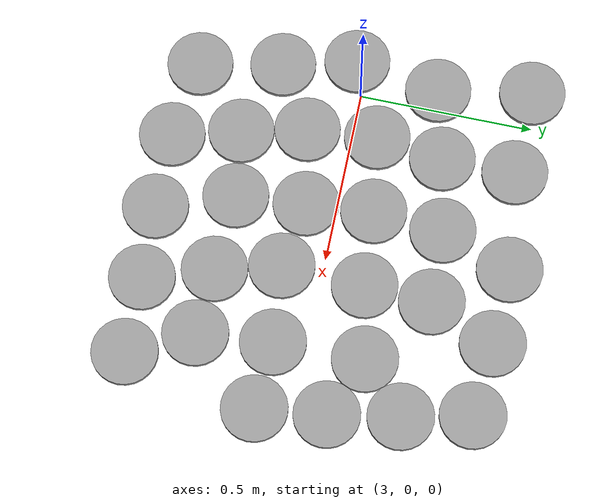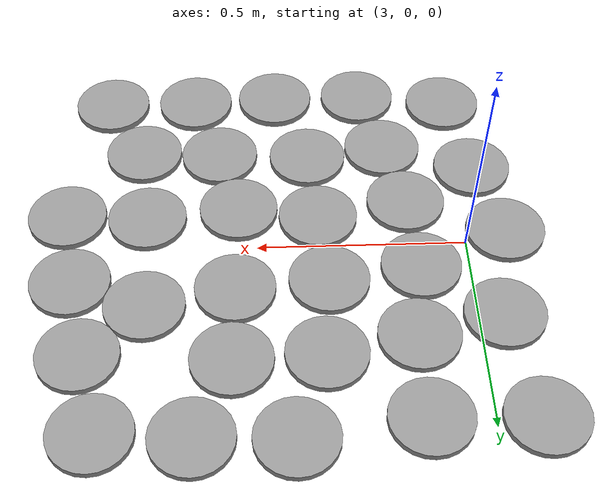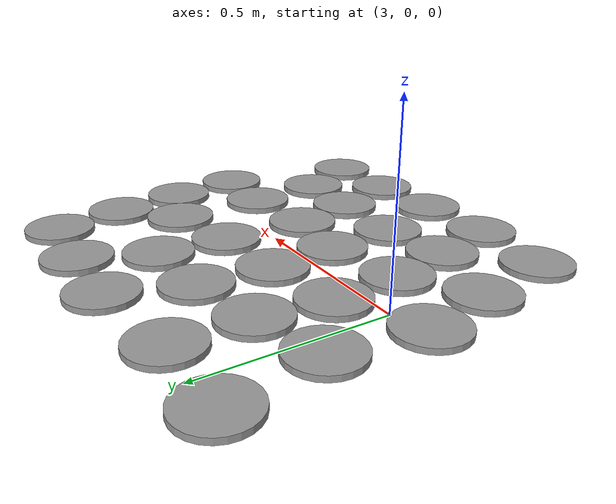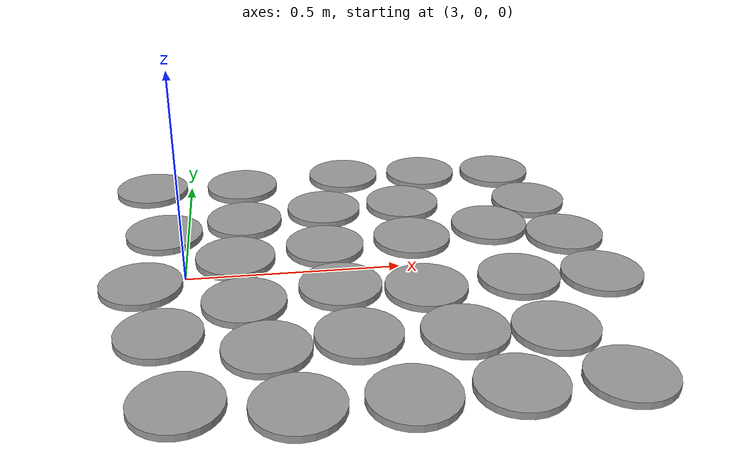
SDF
<sdf version="1.6">
 <world name="default">
  <model name="unit_cylinder_clone_clone_138">
   <pose>2.89325 0.483274 0.008108 0 -0 0</pose>
   <link name="link">
    <inertial>
     <mass>1</mass>
     <inertia><ixx>0.145833</ixx><ixy>0</ixy><ixz>0</ixz><iyy>0.145833</iyy><iyz>0</iyz><izz>0.125</izz></inertia>
    </inertial>
    <collision name="collision">
     <geometry><cylinder><radius>0.0950718</radius><length>0.0162339</length></cylinder></geometry>
    </collision>
    <visual name="visual">
     <geometry><cylinder><radius>0.0950718</radius><length>0.0162339</length></cylinder></geometry>
     <material>
      <script><name>Gazebo/Grey</name><uri>file://media/materials/scripts/gazebo.material</uri></script>
     </material>
    </visual>
   </link>
  </model>
  <model name="unit_cylinder_clone_clone_139">
   <pose>3.13849 0.47754 0.008111 0 -0 0</pose>
   <link name="link">
    <inertial>
     <mass>1</mass>
     <inertia><ixx>0.145833</ixx><ixy>0</ixy><ixz>0</ixz><iyy>0.145833</iyy><iyz>0</iyz><izz>0.125</izz></inertia>
    </inertial>
    <collision name="collision">
     <geometry><cylinder><radius>0.0950718</radius><length>0.0162339</length></cylinder></geometry>
    </collision>
    <visual name="visual">
     <geometry><cylinder><radius>0.0950718</radius><length>0.0162339</length></cylinder></geometry>
     <material>
      <script><name>Gazebo/Grey</name><uri>file://media/materials/scripts/gazebo.material</uri></script>
     </material>
    </visual>
   </link>
  </model>
  <model name="unit_cylinder_clone_clone_140">
   <pose>3.42416 0.515828 0.008111 0 -0 0</pose>
   <link name="link">
    <inertial>
     <mass>1</mass>
     <inertia><ixx>0.145833</ixx><ixy>0</ixy><ixz>0</ixz><iyy>0.145833</iyy><iyz>0</iyz><izz>0.125</izz></inertia>
    </inertial>
    <collision name="collision">
     <geometry><cylinder><radius>0.0950718</radius><length>0.0162339</length></cylinder></geometry>
    </collision>
    <visual name="visual">
     <geometry><cylinder><radius>0.0950718</radius><length>0.0162339</length></cylinder></geometry>
     <material>
      <script><name>Gazebo/Grey</name><uri>file://media/materials/scripts/gazebo.material</uri></script>
     </material>
    </visual>
   </link>
  </model>
  <model name="unit_cylinder_clone_clone_141">
   <pose>3.64434 0.508946 0.008111 0 -0 0</pose>
   <link name="link">
    <inertial>
     <mass>1</mass>
     <inertia><ixx>0.145833</ixx><ixy>0</ixy><ixz>0</ixz><iyy>0.145833</iyy><iyz>0</iyz><izz>0.125</izz></inertia>
    </inertial>
    <collision name="collision">
     <geometry><cylinder><radius>0.0950718</radius><length>0.0162339</length></cylinder></geometry>
    </collision>
    <visual name="visual">
     <geometry><cylinder><radius>0.0950718</radius><length>0.0162339</length></cylinder></geometry>
     <material>
      <script><name>Gazebo/Grey</name><uri>file://media/materials/scripts/gazebo.material</uri></script>
     </material>
    </visual>
   </link>
  </model>
  <model name="unit_cylinder_clone_clone_142">
   <pose>3.85659 0.493248 0.008111 0 -0 0</pose>
   <link name="link">
    <inertial>
     <mass>1</mass>
     <inertia><ixx>0.145833</ixx><ixy>0</ixy><ixz>0</ixz><iyy>0.145833</iyy><iyz>0</iyz><izz>0.125</izz></inertia>
    </inertial>
    <collision name="collision">
     <geometry><cylinder><radius>0.0950718</radius><length>0.0162339</length></cylinder></geometry>
    </collision>
    <visual name="visual">
     <geometry><cylinder><radius>0.0950718</radius><length>0.0162339</length></cylinder></geometry>
     <material>
      <script><name>Gazebo/Grey</name><uri>file://media/materials/scripts/gazebo.material</uri></script>
     </material>
    </visual>
   </link>
  </model>
  <model name="unit_cylinder_clone_clone_156">
   <pose>3.8768 -0.494769 0.008108 0 -0 0</pose>
   <link name="link">
    <inertial>
     <mass>1</mass>
     <inertia><ixx>0.145833</ixx><ixy>0</ixy><ixz>0</ixz><iyy>0.145833</iyy><iyz>0</iyz><izz>0.125</izz></inertia>
    </inertial>
    <collision name="collision">
     <geometry><cylinder><radius>0.0950718</radius><length>0.0162339</length></cylinder></geometry>
    </collision>
    <visual name="visual">
     <geometry><cylinder><radius>0.0950718</radius><length>0.0162339</length></cylinder></geometry>
     <material>
      <script><name>Gazebo/Grey</name><uri>file://media/materials/scripts/gazebo.material</uri></script>
     </material>
    </visual>
   </link>
  </model>
  <model name="unit_cylinder_clone_clone_157">
   <pose>3.65687 -0.496051 0.008108 0 -0 0</pose>
   <link name="link">
    <inertial>
     <mass>1</mass>
     <inertia><ixx>0.145833</ixx><ixy>0</ixy><ixz>0</ixz><iyy>0.145833</iyy><iyz>0</iyz><izz>0.125</izz></inertia>
    </inertial>
    <collision name="collision">
     <geometry><cylinder><radius>0.0950718</radius><length>0.0162339</length></cylinder></geometry>
    </collision>
    <visual name="visual">
     <geometry><cylinder><radius>0.0950718</radius><length>0.0162339</length></cylinder></geometry>
     <material>
      <script><name>Gazebo/Grey</name><uri>file://media/materials/scripts/gazebo.material</uri></script>
     </material>
    </visual>
   </link>
  </model>
  <model name="unit_cylinder_clone_clone_158">
   <pose>3.4459 -0.505387 0.008111 0 -0 0</pose>
   <link name="link">
    <inertial>
     <mass>1</mass>
     <inertia><ixx>0.145833</ixx><ixy>0</ixy><ixz>0</ixz><iyy>0.145833</iyy><iyz>0</iyz><izz>0.125</izz></inertia>
    </inertial>
    <collision name="collision">
     <geometry><cylinder><radius>0.0950718</radius><length>0.0162339</length></cylinder></geometry>
    </collision>
    <visual name="visual">
     <geometry><cylinder><radius>0.0950718</radius><length>0.0162339</length></cylinder></geometry>
     <material>
      <script><name>Gazebo/Grey</name><uri>file://media/materials/scripts/gazebo.material</uri></script>
     </material>
    </visual>
   </link>
  </model>
  <model name="unit_cylinder_clone_clone_159">
   <pose>3.22615 -0.506667 0.008108 0 -0 0</pose>
   <link name="link">
    <inertial>
     <mass>1</mass>
     <inertia><ixx>0.145833</ixx><ixy>0</ixy><ixz>0</ixz><iyy>0.145833</iyy><iyz>0</iyz><izz>0.125</izz></inertia>
    </inertial>
    <collision name="collision">
     <geometry><cylinder><radius>0.0950718</radius><length>0.0162339</length></cylinder></geometry>
    </collision>
    <visual name="visual">
     <geometry><cylinder><radius>0.0950718</radius><length>0.0162339</length></cylinder></geometry>
     <material>
      <script><name>Gazebo/Grey</name><uri>file://media/materials/scripts/gazebo.material</uri></script>
     </material>
    </visual>
   </link>
  </model>
  <model name="unit_cylinder_clone_clone_160">
   <pose>3 -0.474655 0.008108 0 -0 0</pose>
   <link name="link">
    <inertial>
     <mass>1</mass>
     <inertia><ixx>0.145833</ixx><ixy>0</ixy><ixz>0</ixz><iyy>0.145833</iyy><iyz>0</iyz><izz>0.125</izz></inertia>
    </inertial>
    <collision name="collision">
     <geometry><cylinder><radius>0.0950718</radius><length>0.0162339</length></cylinder></geometry>
    </collision>
    <visual name="visual">
     <geometry><cylinder><radius>0.0950718</radius><length>0.0162339</length></cylinder></geometry>
     <material>
      <script><name>Gazebo/Grey</name><uri>file://media/materials/scripts/gazebo.material</uri></script>
     </material>
    </visual>
   </link>
  </model>
  <model name="unit_cylinder_clone_clone_205">
   <pose>2.95359 -0.239219 0.008116 0 -0 3e-06</pose>
   <link name="link">
    <inertial>
     <mass>1</mass>
     <inertia><ixx>0.145833</ixx><ixy>0</ixy><ixz>0</ixz><iyy>0.145833</iyy><iyz>0</iyz><izz>0.125</izz></inertia>
    </inertial>
    <collision name="collision">
     <geometry><cylinder><radius>0.0950718</radius><length>0.0162339</length></cylinder></geometry>
    </collision>
    <visual name="visual">
     <geometry><cylinder><radius>0.0950718</radius><length>0.0162339</length></cylinder></geometry>
     <material>
      <script><name>Gazebo/Grey</name><uri>file://media/materials/scripts/gazebo.material</uri></script>
     </material>
    </visual>
   </link>
  </model>
  <model name="unit_cylinder_clone_clone_206">
   <pose>2.90055 -0.030914 0.008108 0 -0 0</pose>
   <link name="link">
    <inertial>
     <mass>1</mass>
     <inertia><ixx>0.145833</ixx><ixy>0</ixy><ixz>0</ixz><iyy>0.145833</iyy><iyz>0</iyz><izz>0.125</izz></inertia>
    </inertial>
    <collision name="collision">
     <geometry><cylinder><radius>0.0950718</radius><length>0.0162339</length></cylinder></geometry>
    </collision>
    <visual name="visual">
     <geometry><cylinder><radius>0.0950718</radius><length>0.0162339</length></cylinder></geometry>
     <material>
      <script><name>Gazebo/Grey</name><uri>file://media/materials/scripts/gazebo.material</uri></script>
     </material>
    </visual>
   </link>
  </model>
  <model name="unit_cylinder_clone_clone_207">
   <pose>2.94007 0.215475 0.008116 0 -0 0</pose>
   <link name="link">
    <inertial>
     <mass>1</mass>
     <inertia><ixx>0.145833</ixx><ixy>0</ixy><ixz>0</ixz><iyy>0.145833</iyy><iyz>0</iyz><izz>0.125</izz></inertia>
    </inertial>
    <collision name="collision">
     <geometry><cylinder><radius>0.0950718</radius><length>0.0162339</length></cylinder></geometry>
    </collision>
    <visual name="visual">
     <geometry><cylinder><radius>0.0950718</radius><length>0.0162339</length></cylinder></geometry>
     <material>
      <script><name>Gazebo/Grey</name><uri>file://media/materials/scripts/gazebo.material</uri></script>
     </material>
    </visual>
   </link>
  </model>
  <model name="unit_cylinder_clone_clone_208">
   <pose>3.14051 0.266701 0.008108 0 -0 0</pose>
   <link name="link">
    <inertial>
     <mass>1</mass>
     <inertia><ixx>0.145833</ixx><ixy>0</ixy><ixz>0</ixz><iyy>0.145833</iyy><iyz>0</iyz><izz>0.125</izz></inertia>
    </inertial>
    <collision name="collision">
     <geometry><cylinder><radius>0.0950718</radius><length>0.0162339</length></cylinder></geometry>
    </collision>
    <visual name="visual">
     <geometry><cylinder><radius>0.0950718</radius><length>0.0162339</length></cylinder></geometry>
     <material>
      <script><name>Gazebo/Grey</name><uri>file://media/materials/scripts/gazebo.material</uri></script>
     </material>
    </visual>
   </link>
  </model>
  <model name="unit_cylinder_clone_clone_209">
   <pose>3.11553 0.071524 0.008108 0 -0 0</pose>
   <link name="link">
    <inertial>
     <mass>1</mass>
     <inertia><ixx>0.145833</ixx><ixy>0</ixy><ixz>0</ixz><iyy>0.145833</iyy><iyz>0</iyz><izz>0.125</izz></inertia>
    </inertial>
    <collision name="collision">
     <geometry><cylinder><radius>0.0950718</radius><length>0.0162339</length></cylinder></geometry>
    </collision>
    <visual name="visual">
     <geometry><cylinder><radius>0.0950718</radius><length>0.0162339</length></cylinder></geometry>
     <material>
      <script><name>Gazebo/Grey</name><uri>file://media/materials/scripts/gazebo.material</uri></script>
     </material>
    </visual>
   </link>
  </model>
  <model name="unit_cylinder_clone_clone_210">
   <pose>3.13292 -0.129381 0.008116 0 0 -2e-06</pose>
   <link name="link">
    <inertial>
     <mass>1</mass>
     <inertia><ixx>0.145833</ixx><ixy>0</ixy><ixz>0</ixz><iyy>0.145833</iyy><iyz>0</iyz><izz>0.125</izz></inertia>
    </inertial>
    <collision name="collision">
     <geometry><cylinder><radius>0.0950718</radius><length>0.0162339</length></cylinder></geometry>
    </collision>
    <visual name="visual">
     <geometry><cylinder><radius>0.0950718</radius><length>0.0162339</length></cylinder></geometry>
     <material>
      <script><name>Gazebo/Grey</name><uri>file://media/materials/scripts/gazebo.material</uri></script>
     </material>
    </visual>
   </link>
  </model>
  <model name="unit_cylinder_clone_clone_211">
   <pose>3.17541 -0.314717 0.008115 0 0 -1e-05</pose>
   <link name="link">
    <inertial>
     <mass>1</mass>
     <inertia><ixx>0.145833</ixx><ixy>0</ixy><ixz>0</ixz><iyy>0.145833</iyy><iyz>0</iyz><izz>0.125</izz></inertia>
    </inertial>
    <collision name="collision">
     <geometry><cylinder><radius>0.0950718</radius><length>0.0162339</length></cylinder></geometry>
    </collision>
    <visual name="visual">
     <geometry><cylinder><radius>0.0950718</radius><length>0.0162339</length></cylinder></geometry>
     <material>
      <script><name>Gazebo/Grey</name><uri>file://media/materials/scripts/gazebo.material</uri></script>
     </material>
    </visual>
   </link>
  </model>
  <model name="unit_cylinder_clone_clone_212">
   <pose>3.36841 -0.288432 0.008107 0 -0 0</pose>
   <link name="link">
    <inertial>
     <mass>1</mass>
     <inertia><ixx>0.145833</ixx><ixy>0</ixy><ixz>0</ixz><iyy>0.145833</iyy><iyz>0</iyz><izz>0.125</izz></inertia>
    </inertial>
    <collision name="collision">
     <geometry><cylinder><radius>0.0950718</radius><length>0.0162339</length></cylinder></geometry>
    </collision>
    <visual name="visual">
     <geometry><cylinder><radius>0.0950718</radius><length>0.0162339</length></cylinder></geometry>
     <material>
      <script><name>Gazebo/Grey</name><uri>file://media/materials/scripts/gazebo.material</uri></script>
     </material>
    </visual>
   </link>
  </model>
  <model name="unit_cylinder_clone_clone_213">
   <pose>3.35092 -0.08765 0.008108 0 -0 0</pose>
   <link name="link">
    <inertial>
     <mass>1</mass>
     <inertia><ixx>0.145833</ixx><ixy>0</ixy><ixz>0</ixz><iyy>0.145833</iyy><iyz>0</iyz><izz>0.125</izz></inertia>
    </inertial>
    <collision name="collision">
     <geometry><cylinder><radius>0.0950718</radius><length>0.0162339</length></cylinder></geometry>
    </collision>
    <visual name="visual">
     <geometry><cylinder><radius>0.0950718</radius><length>0.0162339</length></cylinder></geometry>
     <material>
      <script><name>Gazebo/Grey</name><uri>file://media/materials/scripts/gazebo.material</uri></script>
     </material>
    </visual>
   </link>
  </model>
  <model name="unit_cylinder_clone_clone_214">
   <pose>3.33373 0.105676 0.008107 0 -0 0</pose>
   <link name="link">
    <inertial>
     <mass>1</mass>
     <inertia><ixx>0.145833</ixx><ixy>0</ixy><ixz>0</ixz><iyy>0.145833</iyy><iyz>0</iyz><izz>0.125</izz></inertia>
    </inertial>
    <collision name="collision">
     <geometry><cylinder><radius>0.0950718</radius><length>0.0162339</length></cylinder></geometry>
    </collision>
    <visual name="visual">
     <geometry><cylinder><radius>0.0950718</radius><length>0.0162339</length></cylinder></geometry>
     <material>
      <script><name>Gazebo/Grey</name><uri>file://media/materials/scripts/gazebo.material</uri></script>
     </material>
    </visual>
   </link>
  </model>
  <model name="unit_cylinder_clone_clone_215">
   <pose>3.34991 0.308941 0.008111 0 -0 0</pose>
   <link name="link">
    <inertial>
     <mass>1</mass>
     <inertia><ixx>0.145833</ixx><ixy>0</ixy><ixz>0</ixz><iyy>0.145833</iyy><iyz>0</iyz><izz>0.125</izz></inertia>
    </inertial>
    <collision name="collision">
     <geometry><cylinder><radius>0.0950718</radius><length>0.0162339</length></cylinder></geometry>
    </collision>
    <visual name="visual">
     <geometry><cylinder><radius>0.0950718</radius><length>0.0162339</length></cylinder></geometry>
     <material>
      <script><name>Gazebo/Grey</name><uri>file://media/materials/scripts/gazebo.material</uri></script>
     </material>
    </visual>
   </link>
  </model>
  <model name="unit_cylinder_clone_clone_216">
   <pose>3.56087 0.318476 0.008111 0 -0 0</pose>
   <link name="link">
    <inertial>
     <mass>1</mass>
     <inertia><ixx>0.145833</ixx><ixy>0</ixy><ixz>0</ixz><iyy>0.145833</iyy><iyz>0</iyz><izz>0.125</izz></inertia>
    </inertial>
    <collision name="collision">
     <geometry><cylinder><radius>0.0950718</radius><length>0.0162339</length></cylinder></geometry>
    </collision>
    <visual name="visual">
     <geometry><cylinder><radius>0.0950718</radius><length>0.0162339</length></cylinder></geometry>
     <material>
      <script><name>Gazebo/Grey</name><uri>file://media/materials/scripts/gazebo.material</uri></script>
     </material>
    </visual>
   </link>
  </model>
  <model name="unit_cylinder_clone_clone_217">
   <pose>3.55278 0.12396 0.008111 0 -0 0</pose>
   <link name="link">
    <inertial>
     <mass>1</mass>
     <inertia><ixx>0.145833</ixx><ixy>0</ixy><ixz>0</ixz><iyy>0.145833</iyy><iyz>0</iyz><izz>0.125</izz></inertia>
    </inertial>
    <collision name="collision">
     <geometry><cylinder><radius>0.0950718</radius><length>0.0162339</length></cylinder></geometry>
    </collision>
    <visual name="visual">
     <geometry><cylinder><radius>0.0950718</radius><length>0.0162339</length></cylinder></geometry>
     <material>
      <script><name>Gazebo/Grey</name><uri>file://media/materials/scripts/gazebo.material</uri></script>
     </material>
    </visual>
   </link>
  </model>
  <model name="unit_cylinder_clone_clone_218">
   <pose>3.54395 -0.116753 0.008108 0 0 -2.4e-05</pose>
   <link name="link">
    <inertial>
     <mass>1</mass>
     <inertia><ixx>0.145833</ixx><ixy>0</ixy><ixz>0</ixz><iyy>0.145833</iyy><iyz>0</iyz><izz>0.125</izz></inertia>
    </inertial>
    <collision name="collision">
     <geometry><cylinder><radius>0.0950718</radius><length>0.0162339</length></cylinder></geometry>
    </collision>
    <visual name="visual">
     <geometry><cylinder><radius>0.0950718</radius><length>0.0162339</length></cylinder></geometry>
     <material>
      <script><name>Gazebo/Grey</name><uri>file://media/materials/scripts/gazebo.material</uri></script>
     </material>
    </visual>
   </link>
  </model>
  <model name="unit_cylinder_clone_clone_219">
   <pose>3.59163 -0.300822 0.008107 0 0 -2.5e-05</pose>
   <link name="link">
    <inertial>
     <mass>1</mass>
     <inertia><ixx>0.145833</ixx><ixy>0</ixy><ixz>0</ixz><iyy>0.145833</iyy><iyz>0</iyz><izz>0.125</izz></inertia>
    </inertial>
    <collision name="collision">
     <geometry><cylinder><radius>0.0950718</radius><length>0.0162339</length></cylinder></geometry>
    </collision>
    <visual name="visual">
     <geometry><cylinder><radius>0.0950718</radius><length>0.0162339</length></cylinder></geometry>
     <material>
      <script><name>Gazebo/Grey</name><uri>file://media/materials/scripts/gazebo.material</uri></script>
     </material>
    </visual>
   </link>
  </model>
  <model name="unit_cylinder_clone_clone_220">
   <pose>3.78397 -0.313128 0.008111 0 -0 0</pose>
   <link name="link">
    <inertial>
     <mass>1</mass>
     <inertia><ixx>0.145833</ixx><ixy>0</ixy><ixz>0</ixz><iyy>0.145833</iyy><iyz>0</iyz><izz>0.125</izz></inertia>
    </inertial>
    <collision name="collision">
     <geometry><cylinder><radius>0.0950718</radius><length>0.0162339</length></cylinder></geometry>
    </collision>
    <visual name="visual">
     <geometry><cylinder><radius>0.0950718</radius><length>0.0162339</length></cylinder></geometry>
     <material>
      <script><name>Gazebo/Grey</name><uri>file://media/materials/scripts/gazebo.material</uri></script>
     </material>
    </visual>
   </link>
  </model>
  <model name="unit_cylinder_clone_clone_221">
   <pose>3.76566 -0.09443 0.008111 0 -0 0</pose>
   <link name="link">
    <inertial>
     <mass>1</mass>
     <inertia><ixx>0.145833</ixx><ixy>0</ixy><ixz>0</ixz><iyy>0.145833</iyy><iyz>0</iyz><izz>0.125</izz></inertia>
    </inertial>
    <collision name="collision">
     <geometry><cylinder><radius>0.0950718</radius><length>0.0162339</length></cylinder></geometry>
    </collision>
    <visual name="visual">
     <geometry><cylinder><radius>0.0950718</radius><length>0.0162339</length></cylinder></geometry>
     <material>
      <script><name>Gazebo/Grey</name><uri>file://media/materials/scripts/gazebo.material</uri></script>
     </material>
    </visual>
   </link>
  </model>
  <model name="unit_cylinder_clone_clone_222">
   <pose>3.76052 0.167575 0.008111 0 0 -1e-06</pose>
   <link name="link">
    <inertial>
     <mass>1</mass>
     <inertia><ixx>0.145833</ixx><ixy>0</ixy><ixz>0</ixz><iyy>0.145833</iyy><iyz>0</iyz><izz>0.125</izz></inertia>
    </inertial>
    <collision name="collision">
     <geometry><cylinder><radius>0.0950718</radius><length>0.0162339</length></cylinder></geometry>
    </collision>
    <visual name="visual">
     <geometry><cylinder><radius>0.0950718</radius><length>0.0162339</length></cylinder></geometry>
     <material>
      <script><name>Gazebo/Grey</name><uri>file://media/materials/scripts/gazebo.material</uri></script>
     </material>
    </visual>
   </link>
  </model>
  <model name="unit_cylinder_clone_clone_223">
   <pose>3.9005 0.297308 0.008117 0 -0 1e-06</pose>
   <link name="link">
    <inertial>
     <mass>1</mass>
     <inertia><ixx>0.145833</ixx><ixy>0</ixy><ixz>0</ixz><iyy>0.145833</iyy><iyz>0</iyz><izz>0.125</izz></inertia>
    </inertial>
    <collision name="collision">
     <geometry><cylinder><radius>0.0950718</radius><length>0.0162339</length></cylinder></geometry>
    </collision>
    <visual name="visual">
     <geometry><cylinder><radius>0.0950718</radius><length>0.0162339</length></cylinder></geometry>
     <material>
      <script><name>Gazebo/Grey</name><uri>file://media/materials/scripts/gazebo.material</uri></script>
     </material>
    </visual>
   </link>
  </model>
  <model name="unit_cylinder_clone_clone_224">
   <pose>3.93641 0.095318 0.008109 0 -0 1.1e-05</pose>
   <link name="link">
    <inertial>
     <mass>1</mass>
     <inertia><ixx>0.145833</ixx><ixy>0</ixy><ixz>0</ixz><iyy>0.145833</iyy><iyz>0</iyz><izz>0.125</izz></inertia>
    </inertial>
    <collision name="collision">
     <geometry><cylinder><radius>0.0950718</radius><length>0.0162339</length></cylinder></geometry>
    </collision>
    <visual name="visual">
     <geometry><cylinder><radius>0.0950718</radius><length>0.0162339</length></cylinder></geometry>
     <material>
      <script><name>Gazebo/Grey</name><uri>file://media/materials/scripts/gazebo.material</uri></script>
     </material>
    </visual>
   </link>
  </model>
  <model name="unit_cylinder_clone_clone_225">
   <pose>3.9608 -0.105522 0.008111 0 -0 0</pose>
   <link name="link">
    <inertial>
     <mass>1</mass>
     <inertia><ixx>0.145833</ixx><ixy>0</ixy><ixz>0</ixz><iyy>0.145833</iyy><iyz>0</iyz><izz>0.125</izz></inertia>
    </inertial>
    <collision name="collision">
     <geometry><cylinder><radius>0.0950718</radius><length>0.0162339</length></cylinder></geometry>
    </collision>
    <visual name="visual">
     <geometry><cylinder><radius>0.0950718</radius><length>0.0162339</length></cylinder></geometry>
     <material>
      <script><name>Gazebo/Grey</name><uri>file://media/materials/scripts/gazebo.material</uri></script>
     </material>
    </visual>
   </link>
  </model>
 </world>
</sdf>
